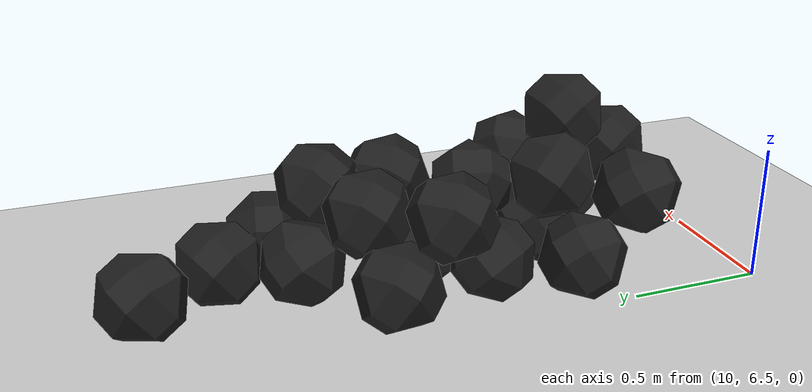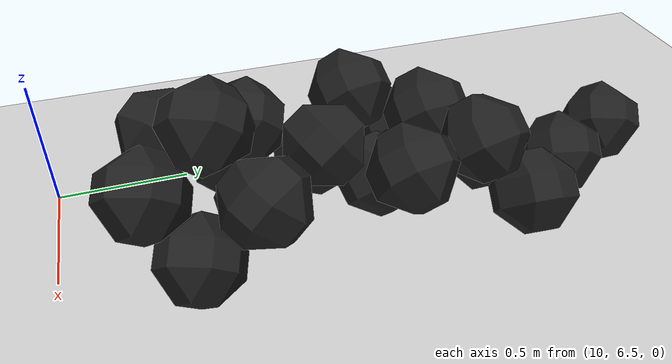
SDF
<sdf version="1.7">
 <world name="default">
  <model name="ground_plane">
   <static>1</static>
   <link name="link">
    <collision name="collision">
     <geometry><plane><normal>0 0 1</normal><size>100 100</size></plane></geometry>
     <surface><friction><ode><mu>100</mu><mu2>50</mu2></ode></friction></surface>
    </collision>
    <visual name="visual">
     <cast_shadows>0</cast_shadows>
     <geometry><plane><normal>0 0 1</normal><size>100 100</size></plane></geometry>
     <material>
      <script><uri>file://media/materials/scripts/gazebo.material</uri><name>Gazebo/Grey</name></script>
     </material>
    </visual>
   </link>
  </model>
  <model name="haoduomiantiaa_7">
   <link name="link_0">
    <inertial>
     <mass>0.2</mass>
     <inertia>
      <ixx>0.166667</ixx>
      <ixy>0</ixy>
      <ixz>0</ixz>
      <iyy>0.166667</iyy>
      <iyz>0</iyz>
      <izz>0.166667</izz>
     </inertia>
    </inertial>
    <visual name="visual">
     <geometry>
      <mesh>
       <uri>/home/lihaoyang/catkin_ws/src/pudong_gazebo/world/stl/haoduomianti.stl</uri>
       <scale>1 1 1</scale>
      </mesh>
     </geometry>
     <material>
      <lighting>1</lighting>
      <script><uri>file://media/materials/scripts/gazebo.material</uri><name>Gazebo/Black</name></script>
      <shader type="pixel"><normal_map>__default__</normal_map></shader>
      <ambient>0.3 0.3 0.3 1</ambient>
      <diffuse>0.7 0.7 0.7 1</diffuse>
      <specular>0.01 0.01 0.01 1</specular>
      <emissive>0 0 0 1</emissive>
     </material>
    </visual>
    <collision name="collision">
     <geometry>
      <mesh>
       <uri>/home/lihaoyang/catkin_ws/src/pudong_gazebo/world/stl/haoduomianti.stl</uri>
       <scale>1 1 1</scale>
      </mesh>
     </geometry>
     <surface>
      <friction>
       <ode><mu>1</mu><mu2>1</mu2><fdir1>0 0 0</fdir1><slip1>0</slip1><slip2>0</slip2></ode>
       <torsional>
        <coefficient>1</coefficient>
        <patch_radius>0</patch_radius>
        <surface_radius>0</surface_radius>
        <use_patch_radius>1</use_patch_radius>
        <ode><slip>0</slip></ode>
       </torsional>
      </friction>
      <bounce><restitution_coefficient>0</restitution_coefficient><threshold>1e+06</threshold></bounce>
      <contact>
       <collide_without_contact>0</collide_without_contact>
       <collide_without_contact_bitmask>1</collide_without_contact_bitmask>
       <collide_bitmask>1</collide_bitmask>
       <ode>
        <soft_cfm>0</soft_cfm>
        <soft_erp>0.2</soft_erp>
        <kp>1e+13</kp>
        <kd>1</kd>
        <max_vel>0.01</max_vel>
        <min_depth>0</min_depth>
       </ode>
       <bullet>
        <split_impulse>1</split_impulse>
        <split_impulse_penetration_threshold>-0.01</split_impulse_penetration_threshold>
        <soft_cfm>0</soft_cfm>
        <soft_erp>0.2</soft_erp>
        <kp>1e+13</kp>
        <kd>1</kd>
       </bullet>
      </contact>
     </surface>
    </collision>
   </link>
   <static>0</static>
   <pose>10.6925 6.98167 -0.115342 0.785476 -0.614709 -1.40642</pose>
  </model>
  <model name="haoduomiantiaa_11">
   <link name="link_0">
    <inertial>
     <mass>0.2</mass>
     <inertia>
      <ixx>0.166667</ixx>
      <ixy>0</ixy>
      <ixz>0</ixz>
      <iyy>0.166667</iyy>
      <iyz>0</iyz>
      <izz>0.166667</izz>
     </inertia>
    </inertial>
    <visual name="visual">
     <geometry>
      <mesh>
       <uri>/home/lihaoyang/catkin_ws/src/pudong_gazebo/world/stl/haoduomianti.stl</uri>
       <scale>1 1 1</scale>
      </mesh>
     </geometry>
     <material>
      <lighting>1</lighting>
      <script><uri>file://media/materials/scripts/gazebo.material</uri><name>Gazebo/Black</name></script>
      <shader type="pixel"><normal_map>__default__</normal_map></shader>
      <ambient>0.3 0.3 0.3 1</ambient>
      <diffuse>0.7 0.7 0.7 1</diffuse>
      <specular>0.01 0.01 0.01 1</specular>
      <emissive>0 0 0 1</emissive>
     </material>
    </visual>
    <collision name="collision">
     <geometry>
      <mesh>
       <uri>/home/lihaoyang/catkin_ws/src/pudong_gazebo/world/stl/haoduomianti.stl</uri>
       <scale>1 1 1</scale>
      </mesh>
     </geometry>
     <surface>
      <friction>
       <ode><mu>1</mu><mu2>1</mu2><fdir1>0 0 0</fdir1><slip1>0</slip1><slip2>0</slip2></ode>
       <torsional>
        <coefficient>1</coefficient>
        <patch_radius>0</patch_radius>
        <surface_radius>0</surface_radius>
        <use_patch_radius>1</use_patch_radius>
        <ode><slip>0</slip></ode>
       </torsional>
      </friction>
      <bounce><restitution_coefficient>0</restitution_coefficient><threshold>1e+06</threshold></bounce>
      <contact>
       <collide_without_contact>0</collide_without_contact>
       <collide_without_contact_bitmask>1</collide_without_contact_bitmask>
       <collide_bitmask>1</collide_bitmask>
       <ode>
        <soft_cfm>0</soft_cfm>
        <soft_erp>0.2</soft_erp>
        <kp>1e+13</kp>
        <kd>1</kd>
        <max_vel>0.01</max_vel>
        <min_depth>0</min_depth>
       </ode>
       <bullet>
        <split_impulse>1</split_impulse>
        <split_impulse_penetration_threshold>-0.01</split_impulse_penetration_threshold>
        <soft_cfm>0</soft_cfm>
        <soft_erp>0.2</soft_erp>
        <kp>1e+13</kp>
        <kd>1</kd>
       </bullet>
      </contact>
     </surface>
    </collision>
   </link>
   <static>0</static>
   <pose>10.313 7.37369 -0.074002 0.047479 -0.784931 0.69723</pose>
  </model>
  <model name="haoduomiantiaa_15">
   <link name="link_0">
    <inertial>
     <mass>0.2</mass>
     <inertia>
      <ixx>0.166667</ixx>
      <ixy>0</ixy>
      <ixz>0</ixz>
      <iyy>0.166667</iyy>
      <iyz>0</iyz>
      <izz>0.166667</izz>
     </inertia>
    </inertial>
    <visual name="visual">
     <geometry>
      <mesh>
       <uri>/home/lihaoyang/catkin_ws/src/pudong_gazebo/world/stl/haoduomianti.stl</uri>
       <scale>1 1 1</scale>
      </mesh>
     </geometry>
     <material>
      <lighting>1</lighting>
      <script><uri>file://media/materials/scripts/gazebo.material</uri><name>Gazebo/Black</name></script>
      <shader type="pixel"><normal_map>__default__</normal_map></shader>
      <ambient>0.3 0.3 0.3 1</ambient>
      <diffuse>0.7 0.7 0.7 1</diffuse>
      <specular>0.01 0.01 0.01 1</specular>
      <emissive>0 0 0 1</emissive>
     </material>
    </visual>
    <collision name="collision">
     <geometry>
      <mesh>
       <uri>/home/lihaoyang/catkin_ws/src/pudong_gazebo/world/stl/haoduomianti.stl</uri>
       <scale>1 1 1</scale>
      </mesh>
     </geometry>
     <surface>
      <friction>
       <ode><mu>1</mu><mu2>1</mu2><fdir1>0 0 0</fdir1><slip1>0</slip1><slip2>0</slip2></ode>
       <torsional>
        <coefficient>1</coefficient>
        <patch_radius>0</patch_radius>
        <surface_radius>0</surface_radius>
        <use_patch_radius>1</use_patch_radius>
        <ode><slip>0</slip></ode>
       </torsional>
      </friction>
      <bounce><restitution_coefficient>0</restitution_coefficient><threshold>1e+06</threshold></bounce>
      <contact>
       <collide_without_contact>0</collide_without_contact>
       <collide_without_contact_bitmask>1</collide_without_contact_bitmask>
       <collide_bitmask>1</collide_bitmask>
       <ode>
        <soft_cfm>0</soft_cfm>
        <soft_erp>0.2</soft_erp>
        <kp>1e+13</kp>
        <kd>1</kd>
        <max_vel>0.01</max_vel>
        <min_depth>0</min_depth>
       </ode>
       <bullet>
        <split_impulse>1</split_impulse>
        <split_impulse_penetration_threshold>-0.01</split_impulse_penetration_threshold>
        <soft_cfm>0</soft_cfm>
        <soft_erp>0.2</soft_erp>
        <kp>1e+13</kp>
        <kd>1</kd>
       </bullet>
      </contact>
     </surface>
    </collision>
   </link>
   <static>0</static>
   <pose>10.5856 6.84041 0.108561 0.778617 -0.623869 0.733198</pose>
  </model>
  <model name="haoduomiantiaa_21">
   <link name="link_0">
    <inertial>
     <mass>0.2</mass>
     <inertia>
      <ixx>0.166667</ixx>
      <ixy>0</ixy>
      <ixz>0</ixz>
      <iyy>0.166667</iyy>
      <iyz>0</iyz>
      <izz>0.166667</izz>
     </inertia>
    </inertial>
    <visual name="visual">
     <geometry>
      <mesh>
       <uri>/home/lihaoyang/catkin_ws/src/pudong_gazebo/world/stl/haoduomianti.stl</uri>
       <scale>1 1 1</scale>
      </mesh>
     </geometry>
     <material>
      <lighting>1</lighting>
      <script><uri>file://media/materials/scripts/gazebo.material</uri><name>Gazebo/Black</name></script>
      <shader type="pixel"><normal_map>__default__</normal_map></shader>
      <ambient>0.3 0.3 0.3 1</ambient>
      <diffuse>0.7 0.7 0.7 1</diffuse>
      <specular>0.01 0.01 0.01 1</specular>
      <emissive>0 0 0 1</emissive>
     </material>
    </visual>
    <collision name="collision">
     <geometry>
      <mesh>
       <uri>/home/lihaoyang/catkin_ws/src/pudong_gazebo/world/stl/haoduomianti.stl</uri>
       <scale>1 1 1</scale>
      </mesh>
     </geometry>
     <surface>
      <friction>
       <ode><mu>1</mu><mu2>1</mu2><fdir1>0 0 0</fdir1><slip1>0</slip1><slip2>0</slip2></ode>
       <torsional>
        <coefficient>1</coefficient>
        <patch_radius>0</patch_radius>
        <surface_radius>0</surface_radius>
        <use_patch_radius>1</use_patch_radius>
        <ode><slip>0</slip></ode>
       </torsional>
      </friction>
      <bounce><restitution_coefficient>0</restitution_coefficient><threshold>1e+06</threshold></bounce>
      <contact>
       <collide_without_contact>0</collide_without_contact>
       <collide_without_contact_bitmask>1</collide_without_contact_bitmask>
       <collide_bitmask>1</collide_bitmask>
       <ode>
        <soft_cfm>0</soft_cfm>
        <soft_erp>0.2</soft_erp>
        <kp>1e+13</kp>
        <kd>1</kd>
        <max_vel>0.01</max_vel>
        <min_depth>0</min_depth>
       </ode>
       <bullet>
        <split_impulse>1</split_impulse>
        <split_impulse_penetration_threshold>-0.01</split_impulse_penetration_threshold>
        <soft_cfm>0</soft_cfm>
        <soft_erp>0.2</soft_erp>
        <kp>1e+13</kp>
        <kd>1</kd>
       </bullet>
      </contact>
     </surface>
    </collision>
   </link>
   <static>0</static>
   <pose>10.6817 8.06538 -0.077247 1.47665 -0.783176 3.0757</pose>
  </model>
  <model name="haoduomiantiaa_23">
   <link name="link_0">
    <inertial>
     <mass>0.2</mass>
     <inertia>
      <ixx>0.166667</ixx>
      <ixy>0</ixy>
      <ixz>0</ixz>
      <iyy>0.166667</iyy>
      <iyz>0</iyz>
      <izz>0.166667</izz>
     </inertia>
    </inertial>
    <visual name="visual">
     <geometry>
      <mesh>
       <uri>/home/lihaoyang/catkin_ws/src/pudong_gazebo/world/stl/haoduomianti.stl</uri>
       <scale>1 1 1</scale>
      </mesh>
     </geometry>
     <material>
      <lighting>1</lighting>
      <script><uri>file://media/materials/scripts/gazebo.material</uri><name>Gazebo/Black</name></script>
      <shader type="pixel"><normal_map>__default__</normal_map></shader>
      <ambient>0.3 0.3 0.3 1</ambient>
      <diffuse>0.7 0.7 0.7 1</diffuse>
      <specular>0.01 0.01 0.01 1</specular>
      <emissive>0 0 0 1</emissive>
     </material>
    </visual>
    <collision name="collision">
     <geometry>
      <mesh>
       <uri>/home/lihaoyang/catkin_ws/src/pudong_gazebo/world/stl/haoduomianti.stl</uri>
       <scale>1 1 1</scale>
      </mesh>
     </geometry>
     <surface>
      <friction>
       <ode><mu>1</mu><mu2>1</mu2><fdir1>0 0 0</fdir1><slip1>0</slip1><slip2>0</slip2></ode>
       <torsional>
        <coefficient>1</coefficient>
        <patch_radius>0</patch_radius>
        <surface_radius>0</surface_radius>
        <use_patch_radius>1</use_patch_radius>
        <ode><slip>0</slip></ode>
       </torsional>
      </friction>
      <bounce><restitution_coefficient>0</restitution_coefficient><threshold>1e+06</threshold></bounce>
      <contact>
       <collide_without_contact>0</collide_without_contact>
       <collide_without_contact_bitmask>1</collide_without_contact_bitmask>
       <collide_bitmask>1</collide_bitmask>
       <ode>
        <soft_cfm>0</soft_cfm>
        <soft_erp>0.2</soft_erp>
        <kp>1e+13</kp>
        <kd>1</kd>
        <max_vel>0.01</max_vel>
        <min_depth>0</min_depth>
       </ode>
       <bullet>
        <split_impulse>1</split_impulse>
        <split_impulse_penetration_threshold>-0.01</split_impulse_penetration_threshold>
        <soft_cfm>0</soft_cfm>
        <soft_erp>0.2</soft_erp>
        <kp>1e+13</kp>
        <kd>1</kd>
       </bullet>
      </contact>
     </surface>
    </collision>
   </link>
   <static>0</static>
   <pose>10.354 8.69849 -0.11547 0.785396 -0.615476 2.76347</pose>
  </model>
  <model name="haoduomiantiaa_28">
   <link name="link_0">
    <inertial>
     <mass>0.2</mass>
     <inertia>
      <ixx>0.166667</ixx>
      <ixy>0</ixy>
      <ixz>0</ixz>
      <iyy>0.166667</iyy>
      <iyz>0</iyz>
      <izz>0.166667</izz>
     </inertia>
    </inertial>
    <visual name="visual">
     <geometry>
      <mesh>
       <uri>/home/lihaoyang/catkin_ws/src/pudong_gazebo/world/stl/haoduomianti.stl</uri>
       <scale>1 1 1</scale>
      </mesh>
     </geometry>
     <material>
      <lighting>1</lighting>
      <script><uri>file://media/materials/scripts/gazebo.material</uri><name>Gazebo/Black</name></script>
      <shader type="pixel"><normal_map>__default__</normal_map></shader>
      <ambient>0.3 0.3 0.3 1</ambient>
      <diffuse>0.7 0.7 0.7 1</diffuse>
      <specular>0.01 0.01 0.01 1</specular>
      <emissive>0 0 0 1</emissive>
     </material>
    </visual>
    <collision name="collision">
     <geometry>
      <mesh>
       <uri>/home/lihaoyang/catkin_ws/src/pudong_gazebo/world/stl/haoduomianti.stl</uri>
       <scale>1 1 1</scale>
      </mesh>
     </geometry>
     <surface>
      <friction>
       <ode><mu>1</mu><mu2>1</mu2><fdir1>0 0 0</fdir1><slip1>0</slip1><slip2>0</slip2></ode>
       <torsional>
        <coefficient>1</coefficient>
        <patch_radius>0</patch_radius>
        <surface_radius>0</surface_radius>
        <use_patch_radius>1</use_patch_radius>
        <ode><slip>0</slip></ode>
       </torsional>
      </friction>
      <bounce><restitution_coefficient>0</restitution_coefficient><threshold>1e+06</threshold></bounce>
      <contact>
       <collide_without_contact>0</collide_without_contact>
       <collide_without_contact_bitmask>1</collide_without_contact_bitmask>
       <collide_bitmask>1</collide_bitmask>
       <ode>
        <soft_cfm>0</soft_cfm>
        <soft_erp>0.2</soft_erp>
        <kp>1e+13</kp>
        <kd>1</kd>
        <max_vel>0.01</max_vel>
        <min_depth>0</min_depth>
       </ode>
       <bullet>
        <split_impulse>1</split_impulse>
        <split_impulse_penetration_threshold>-0.01</split_impulse_penetration_threshold>
        <soft_cfm>0</soft_cfm>
        <soft_erp>0.2</soft_erp>
        <kp>1e+13</kp>
        <kd>1</kd>
       </bullet>
      </contact>
     </surface>
    </collision>
   </link>
   <static>0</static>
   <pose>10.4567 7.22359 -0.115631 0.785351 -0.615391 -1.87047</pose>
  </model>
  <model name="haoduomiantiaa_31">
   <link name="link_0">
    <inertial>
     <mass>0.2</mass>
     <inertia>
      <ixx>0.166667</ixx>
      <ixy>0</ixy>
      <ixz>0</ixz>
      <iyy>0.166667</iyy>
      <iyz>0</iyz>
      <izz>0.166667</izz>
     </inertia>
    </inertial>
    <visual name="visual">
     <geometry>
      <mesh>
       <uri>/home/lihaoyang/catkin_ws/src/pudong_gazebo/world/stl/haoduomianti.stl</uri>
       <scale>1 1 1</scale>
      </mesh>
     </geometry>
     <material>
      <lighting>1</lighting>
      <script><uri>file://media/materials/scripts/gazebo.material</uri><name>Gazebo/Black</name></script>
      <shader type="pixel"><normal_map>__default__</normal_map></shader>
      <ambient>0.3 0.3 0.3 1</ambient>
      <diffuse>0.7 0.7 0.7 1</diffuse>
      <specular>0.01 0.01 0.01 1</specular>
      <emissive>0 0 0 1</emissive>
     </material>
    </visual>
    <collision name="collision">
     <geometry>
      <mesh>
       <uri>/home/lihaoyang/catkin_ws/src/pudong_gazebo/world/stl/haoduomianti.stl</uri>
       <scale>1 1 1</scale>
      </mesh>
     </geometry>
     <surface>
      <friction>
       <ode><mu>1</mu><mu2>1</mu2><fdir1>0 0 0</fdir1><slip1>0</slip1><slip2>0</slip2></ode>
       <torsional>
        <coefficient>1</coefficient>
        <patch_radius>0</patch_radius>
        <surface_radius>0</surface_radius>
        <use_patch_radius>1</use_patch_radius>
        <ode><slip>0</slip></ode>
       </torsional>
      </friction>
      <bounce><restitution_coefficient>0</restitution_coefficient><threshold>1e+06</threshold></bounce>
      <contact>
       <collide_without_contact>0</collide_without_contact>
       <collide_without_contact_bitmask>1</collide_without_contact_bitmask>
       <collide_bitmask>1</collide_bitmask>
       <ode>
        <soft_cfm>0</soft_cfm>
        <soft_erp>0.2</soft_erp>
        <kp>1e+13</kp>
        <kd>1</kd>
        <max_vel>0.01</max_vel>
        <min_depth>0</min_depth>
       </ode>
       <bullet>
        <split_impulse>1</split_impulse>
        <split_impulse_penetration_threshold>-0.01</split_impulse_penetration_threshold>
        <soft_cfm>0</soft_cfm>
        <soft_erp>0.2</soft_erp>
        <kp>1e+13</kp>
        <kd>1</kd>
       </bullet>
      </contact>
     </surface>
    </collision>
   </link>
   <static>0</static>
   <pose>10.4649 7.56277 -0.07761 1.47184 -0.782915 -2.74934</pose>
  </model>
  <model name="haoduomiantiaa_56">
   <link name="link_0">
    <inertial>
     <mass>0.2</mass>
     <inertia>
      <ixx>0.166667</ixx>
      <ixy>0</ixy>
      <ixz>0</ixz>
      <iyy>0.166667</iyy>
      <iyz>0</iyz>
      <izz>0.166667</izz>
     </inertia>
    </inertial>
    <visual name="visual">
     <geometry>
      <mesh>
       <uri>/home/lihaoyang/catkin_ws/src/pudong_gazebo/world/stl/haoduomianti.stl</uri>
       <scale>1 1 1</scale>
      </mesh>
     </geometry>
     <material>
      <lighting>1</lighting>
      <script><uri>file://media/materials/scripts/gazebo.material</uri><name>Gazebo/Black</name></script>
      <shader type="pixel"><normal_map>__default__</normal_map></shader>
      <ambient>0.3 0.3 0.3 1</ambient>
      <diffuse>0.7 0.7 0.7 1</diffuse>
      <specular>0.01 0.01 0.01 1</specular>
      <emissive>0 0 0 1</emissive>
     </material>
    </visual>
    <collision name="collision">
     <geometry>
      <mesh>
       <uri>/home/lihaoyang/catkin_ws/src/pudong_gazebo/world/stl/haoduomianti.stl</uri>
       <scale>1 1 1</scale>
      </mesh>
     </geometry>
     <surface>
      <friction>
       <ode><mu>1</mu><mu2>1</mu2><fdir1>0 0 0</fdir1><slip1>0</slip1><slip2>0</slip2></ode>
       <torsional>
        <coefficient>1</coefficient>
        <patch_radius>0</patch_radius>
        <surface_radius>0</surface_radius>
        <use_patch_radius>1</use_patch_radius>
        <ode><slip>0</slip></ode>
       </torsional>
      </friction>
      <bounce><restitution_coefficient>0</restitution_coefficient><threshold>1e+06</threshold></bounce>
      <contact>
       <collide_without_contact>0</collide_without_contact>
       <collide_without_contact_bitmask>1</collide_without_contact_bitmask>
       <collide_bitmask>1</collide_bitmask>
       <ode>
        <soft_cfm>0</soft_cfm>
        <soft_erp>0.2</soft_erp>
        <kp>1e+13</kp>
        <kd>1</kd>
        <max_vel>0.01</max_vel>
        <min_depth>0</min_depth>
       </ode>
       <bullet>
        <split_impulse>1</split_impulse>
        <split_impulse_penetration_threshold>-0.01</split_impulse_penetration_threshold>
        <soft_cfm>0</soft_cfm>
        <soft_erp>0.2</soft_erp>
        <kp>1e+13</kp>
        <kd>1</kd>
       </bullet>
      </contact>
     </surface>
    </collision>
   </link>
   <static>0</static>
   <pose>10.4455 7.47261 0.082101 0.77826 -0.596535 -0.3037</pose>
  </model>
  <model name="haoduomiantiaa_58">
   <link name="link_0">
    <inertial>
     <mass>0.2</mass>
     <inertia>
      <ixx>0.166667</ixx>
      <ixy>0</ixy>
      <ixz>0</ixz>
      <iyy>0.166667</iyy>
      <iyz>0</iyz>
      <izz>0.166667</izz>
     </inertia>
    </inertial>
    <visual name="visual">
     <geometry>
      <mesh>
       <uri>/home/lihaoyang/catkin_ws/src/pudong_gazebo/world/stl/haoduomianti.stl</uri>
       <scale>1 1 1</scale>
      </mesh>
     </geometry>
     <material>
      <lighting>1</lighting>
      <script><uri>file://media/materials/scripts/gazebo.material</uri><name>Gazebo/Black</name></script>
      <shader type="pixel"><normal_map>__default__</normal_map></shader>
      <ambient>0.3 0.3 0.3 1</ambient>
      <diffuse>0.7 0.7 0.7 1</diffuse>
      <specular>0.01 0.01 0.01 1</specular>
      <emissive>0 0 0 1</emissive>
     </material>
    </visual>
    <collision name="collision">
     <geometry>
      <mesh>
       <uri>/home/lihaoyang/catkin_ws/src/pudong_gazebo/world/stl/haoduomianti.stl</uri>
       <scale>1 1 1</scale>
      </mesh>
     </geometry>
     <surface>
      <friction>
       <ode><mu>1</mu><mu2>1</mu2><fdir1>0 0 0</fdir1><slip1>0</slip1><slip2>0</slip2></ode>
       <torsional>
        <coefficient>1</coefficient>
        <patch_radius>0</patch_radius>
        <surface_radius>0</surface_radius>
        <use_patch_radius>1</use_patch_radius>
        <ode><slip>0</slip></ode>
       </torsional>
      </friction>
      <bounce><restitution_coefficient>0</restitution_coefficient><threshold>1e+06</threshold></bounce>
      <contact>
       <collide_without_contact>0</collide_without_contact>
       <collide_without_contact_bitmask>1</collide_without_contact_bitmask>
       <collide_bitmask>1</collide_bitmask>
       <ode>
        <soft_cfm>0</soft_cfm>
        <soft_erp>0.2</soft_erp>
        <kp>1e+13</kp>
        <kd>1</kd>
        <max_vel>0.01</max_vel>
        <min_depth>0</min_depth>
       </ode>
       <bullet>
        <split_impulse>1</split_impulse>
        <split_impulse_penetration_threshold>-0.01</split_impulse_penetration_threshold>
        <soft_cfm>0</soft_cfm>
        <soft_erp>0.2</soft_erp>
        <kp>1e+13</kp>
        <kd>1</kd>
       </bullet>
      </contact>
     </surface>
    </collision>
   </link>
   <static>0</static>
   <pose>10.3248 7.90521 0.076488 0.749336 -0.609755 -0.916528</pose>
  </model>
  <model name="haoduomiantiaa_68">
   <link name="link_0">
    <inertial>
     <mass>0.2</mass>
     <inertia>
      <ixx>0.166667</ixx>
      <ixy>0</ixy>
      <ixz>0</ixz>
      <iyy>0.166667</iyy>
      <iyz>0</iyz>
      <izz>0.166667</izz>
     </inertia>
    </inertial>
    <visual name="visual">
     <geometry>
      <mesh>
       <uri>/home/lihaoyang/catkin_ws/src/pudong_gazebo/world/stl/haoduomianti.stl</uri>
       <scale>1 1 1</scale>
      </mesh>
     </geometry>
     <material>
      <lighting>1</lighting>
      <script><uri>file://media/materials/scripts/gazebo.material</uri><name>Gazebo/Black</name></script>
      <shader type="pixel"><normal_map>__default__</normal_map></shader>
      <ambient>0.3 0.3 0.3 1</ambient>
      <diffuse>0.7 0.7 0.7 1</diffuse>
      <specular>0.01 0.01 0.01 1</specular>
      <emissive>0 0 0 1</emissive>
     </material>
    </visual>
    <collision name="collision">
     <geometry>
      <mesh>
       <uri>/home/lihaoyang/catkin_ws/src/pudong_gazebo/world/stl/haoduomianti.stl</uri>
       <scale>1 1 1</scale>
      </mesh>
     </geometry>
     <surface>
      <friction>
       <ode><mu>1</mu><mu2>1</mu2><fdir1>0 0 0</fdir1><slip1>0</slip1><slip2>0</slip2></ode>
       <torsional>
        <coefficient>1</coefficient>
        <patch_radius>0</patch_radius>
        <surface_radius>0</surface_radius>
        <use_patch_radius>1</use_patch_radius>
        <ode><slip>0</slip></ode>
       </torsional>
      </friction>
      <bounce><restitution_coefficient>0</restitution_coefficient><threshold>1e+06</threshold></bounce>
      <contact>
       <collide_without_contact>0</collide_without_contact>
       <collide_without_contact_bitmask>1</collide_without_contact_bitmask>
       <collide_bitmask>1</collide_bitmask>
       <ode>
        <soft_cfm>0</soft_cfm>
        <soft_erp>0.2</soft_erp>
        <kp>1e+13</kp>
        <kd>1</kd>
        <max_vel>0.01</max_vel>
        <min_depth>0</min_depth>
       </ode>
       <bullet>
        <split_impulse>1</split_impulse>
        <split_impulse_penetration_threshold>-0.01</split_impulse_penetration_threshold>
        <soft_cfm>0</soft_cfm>
        <soft_erp>0.2</soft_erp>
        <kp>1e+13</kp>
        <kd>1</kd>
       </bullet>
      </contact>
     </surface>
    </collision>
   </link>
   <static>0</static>
   <pose>10.4668 8.08253 -0.097581 0.419221 -0.740181 0.59191</pose>
  </model>
  <model name="haoduomiantiaa_70">
   <link name="link_0">
    <inertial>
     <mass>0.2</mass>
     <inertia>
      <ixx>0.166667</ixx>
      <ixy>0</ixy>
      <ixz>0</ixz>
      <iyy>0.166667</iyy>
      <iyz>0</iyz>
      <izz>0.166667</izz>
     </inertia>
    </inertial>
    <visual name="visual">
     <geometry>
      <mesh>
       <uri>/home/lihaoyang/catkin_ws/src/pudong_gazebo/world/stl/haoduomianti.stl</uri>
       <scale>1 1 1</scale>
      </mesh>
     </geometry>
     <material>
      <lighting>1</lighting>
      <script><uri>file://media/materials/scripts/gazebo.material</uri><name>Gazebo/Black</name></script>
      <shader type="pixel"><normal_map>__default__</normal_map></shader>
      <ambient>0.3 0.3 0.3 1</ambient>
      <diffuse>0.7 0.7 0.7 1</diffuse>
      <specular>0.01 0.01 0.01 1</specular>
      <emissive>0 0 0 1</emissive>
     </material>
    </visual>
    <collision name="collision">
     <geometry>
      <mesh>
       <uri>/home/lihaoyang/catkin_ws/src/pudong_gazebo/world/stl/haoduomianti.stl</uri>
       <scale>1 1 1</scale>
      </mesh>
     </geometry>
     <surface>
      <friction>
       <ode><mu>1</mu><mu2>1</mu2><fdir1>0 0 0</fdir1><slip1>0</slip1><slip2>0</slip2></ode>
       <torsional>
        <coefficient>1</coefficient>
        <patch_radius>0</patch_radius>
        <surface_radius>0</surface_radius>
        <use_patch_radius>1</use_patch_radius>
        <ode><slip>0</slip></ode>
       </torsional>
      </friction>
      <bounce><restitution_coefficient>0</restitution_coefficient><threshold>1e+06</threshold></bounce>
      <contact>
       <collide_without_contact>0</collide_without_contact>
       <collide_without_contact_bitmask>1</collide_without_contact_bitmask>
       <collide_bitmask>1</collide_bitmask>
       <ode>
        <soft_cfm>0</soft_cfm>
        <soft_erp>0.2</soft_erp>
        <kp>1e+13</kp>
        <kd>1</kd>
        <max_vel>0.01</max_vel>
        <min_depth>0</min_depth>
       </ode>
       <bullet>
        <split_impulse>1</split_impulse>
        <split_impulse_penetration_threshold>-0.01</split_impulse_penetration_threshold>
        <soft_cfm>0</soft_cfm>
        <soft_erp>0.2</soft_erp>
        <kp>1e+13</kp>
        <kd>1</kd>
       </bullet>
      </contact>
     </surface>
    </collision>
   </link>
   <static>0</static>
   <pose>10.1164 7.16779 -0.115479 0.785342 -0.615484 0.194674</pose>
  </model>
  <model name="haoduomiantiaa_72">
   <link name="link_0">
    <inertial>
     <mass>0.2</mass>
     <inertia>
      <ixx>0.166667</ixx>
      <ixy>0</ixy>
      <ixz>0</ixz>
      <iyy>0.166667</iyy>
      <iyz>0</iyz>
      <izz>0.166667</izz>
     </inertia>
    </inertial>
    <visual name="visual">
     <geometry>
      <mesh>
       <uri>/home/lihaoyang/catkin_ws/src/pudong_gazebo/world/stl/haoduomianti.stl</uri>
       <scale>1 1 1</scale>
      </mesh>
     </geometry>
     <material>
      <lighting>1</lighting>
      <script><uri>file://media/materials/scripts/gazebo.material</uri><name>Gazebo/Black</name></script>
      <shader type="pixel"><normal_map>__default__</normal_map></shader>
      <ambient>0.3 0.3 0.3 1</ambient>
      <diffuse>0.7 0.7 0.7 1</diffuse>
      <specular>0.01 0.01 0.01 1</specular>
      <emissive>0 0 0 1</emissive>
     </material>
    </visual>
    <collision name="collision">
     <geometry>
      <mesh>
       <uri>/home/lihaoyang/catkin_ws/src/pudong_gazebo/world/stl/haoduomianti.stl</uri>
       <scale>1 1 1</scale>
      </mesh>
     </geometry>
     <surface>
      <friction>
       <ode><mu>1</mu><mu2>1</mu2><fdir1>0 0 0</fdir1><slip1>0</slip1><slip2>0</slip2></ode>
       <torsional>
        <coefficient>1</coefficient>
        <patch_radius>0</patch_radius>
        <surface_radius>0</surface_radius>
        <use_patch_radius>1</use_patch_radius>
        <ode><slip>0</slip></ode>
       </torsional>
      </friction>
      <bounce><restitution_coefficient>0</restitution_coefficient><threshold>1e+06</threshold></bounce>
      <contact>
       <collide_without_contact>0</collide_without_contact>
       <collide_without_contact_bitmask>1</collide_without_contact_bitmask>
       <collide_bitmask>1</collide_bitmask>
       <ode>
        <soft_cfm>0</soft_cfm>
        <soft_erp>0.2</soft_erp>
        <kp>1e+13</kp>
        <kd>1</kd>
        <max_vel>0.01</max_vel>
        <min_depth>0</min_depth>
       </ode>
       <bullet>
        <split_impulse>1</split_impulse>
        <split_impulse_penetration_threshold>-0.01</split_impulse_penetration_threshold>
        <soft_cfm>0</soft_cfm>
        <soft_erp>0.2</soft_erp>
        <kp>1e+13</kp>
        <kd>1</kd>
       </bullet>
      </contact>
     </surface>
    </collision>
   </link>
   <static>0</static>
   <pose>10.5087 8.41586 -0.115477 0.785433 -0.615446 2.89358</pose>
  </model>
  <model name="haoduomiantiaa_94">
   <link name="link_0">
    <inertial>
     <mass>0.2</mass>
     <inertia>
      <ixx>0.166667</ixx>
      <ixy>0</ixy>
      <ixz>0</ixz>
      <iyy>0.166667</iyy>
      <iyz>0</iyz>
      <izz>0.166667</izz>
     </inertia>
    </inertial>
    <visual name="visual">
     <geometry>
      <mesh>
       <uri>/home/lihaoyang/catkin_ws/src/pudong_gazebo/world/stl/haoduomianti.stl</uri>
       <scale>1 1 1</scale>
      </mesh>
     </geometry>
     <material>
      <lighting>1</lighting>
      <script><uri>file://media/materials/scripts/gazebo.material</uri><name>Gazebo/Black</name></script>
      <shader type="pixel"><normal_map>__default__</normal_map></shader>
      <ambient>0.3 0.3 0.3 1</ambient>
      <diffuse>0.7 0.7 0.7 1</diffuse>
      <specular>0.01 0.01 0.01 1</specular>
      <emissive>0 0 0 1</emissive>
     </material>
    </visual>
    <collision name="collision">
     <geometry>
      <mesh>
       <uri>/home/lihaoyang/catkin_ws/src/pudong_gazebo/world/stl/haoduomianti.stl</uri>
       <scale>1 1 1</scale>
      </mesh>
     </geometry>
     <surface>
      <friction>
       <ode><mu>1</mu><mu2>1</mu2><fdir1>0 0 0</fdir1><slip1>0</slip1><slip2>0</slip2></ode>
       <torsional>
        <coefficient>1</coefficient>
        <patch_radius>0</patch_radius>
        <surface_radius>0</surface_radius>
        <use_patch_radius>1</use_patch_radius>
        <ode><slip>0</slip></ode>
       </torsional>
      </friction>
      <bounce><restitution_coefficient>0</restitution_coefficient><threshold>1e+06</threshold></bounce>
      <contact>
       <collide_without_contact>0</collide_without_contact>
       <collide_without_contact_bitmask>1</collide_without_contact_bitmask>
       <collide_bitmask>1</collide_bitmask>
       <ode>
        <soft_cfm>0</soft_cfm>
        <soft_erp>0.2</soft_erp>
        <kp>1e+13</kp>
        <kd>1</kd>
        <max_vel>0.01</max_vel>
        <min_depth>0</min_depth>
       </ode>
       <bullet>
        <split_impulse>1</split_impulse>
        <split_impulse_penetration_threshold>-0.01</split_impulse_penetration_threshold>
        <soft_cfm>0</soft_cfm>
        <soft_erp>0.2</soft_erp>
        <kp>1e+13</kp>
        <kd>1</kd>
       </bullet>
      </contact>
     </surface>
    </collision>
   </link>
   <static>0</static>
   <pose>10.6608 7.72326 0.066561 0.769345 -0.637633 -0.81097</pose>
  </model>
  <model name="haoduomiantiaa_98">
   <link name="link_0">
    <inertial>
     <mass>0.2</mass>
     <inertia>
      <ixx>0.166667</ixx>
      <ixy>0</ixy>
      <ixz>0</ixz>
      <iyy>0.166667</iyy>
      <iyz>0</iyz>
      <izz>0.166667</izz>
     </inertia>
    </inertial>
    <visual name="visual">
     <geometry>
      <mesh>
       <uri>/home/lihaoyang/catkin_ws/src/pudong_gazebo/world/stl/haoduomianti.stl</uri>
       <scale>1 1 1</scale>
      </mesh>
     </geometry>
     <material>
      <lighting>1</lighting>
      <script><uri>file://media/materials/scripts/gazebo.material</uri><name>Gazebo/Black</name></script>
      <shader type="pixel"><normal_map>__default__</normal_map></shader>
      <ambient>0.3 0.3 0.3 1</ambient>
      <diffuse>0.7 0.7 0.7 1</diffuse>
      <specular>0.01 0.01 0.01 1</specular>
      <emissive>0 0 0 1</emissive>
     </material>
    </visual>
    <collision name="collision">
     <geometry>
      <mesh>
       <uri>/home/lihaoyang/catkin_ws/src/pudong_gazebo/world/stl/haoduomianti.stl</uri>
       <scale>1 1 1</scale>
      </mesh>
     </geometry>
     <surface>
      <friction>
       <ode><mu>1</mu><mu2>1</mu2><fdir1>0 0 0</fdir1><slip1>0</slip1><slip2>0</slip2></ode>
       <torsional>
        <coefficient>1</coefficient>
        <patch_radius>0</patch_radius>
        <surface_radius>0</surface_radius>
        <use_patch_radius>1</use_patch_radius>
        <ode><slip>0</slip></ode>
       </torsional>
      </friction>
      <bounce><restitution_coefficient>0</restitution_coefficient><threshold>1e+06</threshold></bounce>
      <contact>
       <collide_without_contact>0</collide_without_contact>
       <collide_without_contact_bitmask>1</collide_without_contact_bitmask>
       <collide_bitmask>1</collide_bitmask>
       <ode>
        <soft_cfm>0</soft_cfm>
        <soft_erp>0.2</soft_erp>
        <kp>1e+13</kp>
        <kd>1</kd>
        <max_vel>0.01</max_vel>
        <min_depth>0</min_depth>
       </ode>
       <bullet>
        <split_impulse>1</split_impulse>
        <split_impulse_penetration_threshold>-0.01</split_impulse_penetration_threshold>
        <soft_cfm>0</soft_cfm>
        <soft_erp>0.2</soft_erp>
        <kp>1e+13</kp>
        <kd>1</kd>
       </bullet>
      </contact>
     </surface>
    </collision>
   </link>
   <static>0</static>
   <pose>10.2226 6.90547 0.085091 0.625959 -0.774547 0.264173</pose>
  </model>
  <model name="haoduomiantiaa_99">
   <link name="link_0">
    <inertial>
     <mass>0.2</mass>
     <inertia>
      <ixx>0.166667</ixx>
      <ixy>0</ixy>
      <ixz>0</ixz>
      <iyy>0.166667</iyy>
      <iyz>0</iyz>
      <izz>0.166667</izz>
     </inertia>
    </inertial>
    <visual name="visual">
     <geometry>
      <mesh>
       <uri>/home/lihaoyang/catkin_ws/src/pudong_gazebo/world/stl/haoduomianti.stl</uri>
       <scale>1 1 1</scale>
      </mesh>
     </geometry>
     <material>
      <lighting>1</lighting>
      <script><uri>file://media/materials/scripts/gazebo.material</uri><name>Gazebo/Black</name></script>
      <shader type="pixel"><normal_map>__default__</normal_map></shader>
      <ambient>0.3 0.3 0.3 1</ambient>
      <diffuse>0.7 0.7 0.7 1</diffuse>
      <specular>0.01 0.01 0.01 1</specular>
      <emissive>0 0 0 1</emissive>
     </material>
    </visual>
    <collision name="collision">
     <geometry>
      <mesh>
       <uri>/home/lihaoyang/catkin_ws/src/pudong_gazebo/world/stl/haoduomianti.stl</uri>
       <scale>1 1 1</scale>
      </mesh>
     </geometry>
     <surface>
      <friction>
       <ode><mu>1</mu><mu2>1</mu2><fdir1>0 0 0</fdir1><slip1>0</slip1><slip2>0</slip2></ode>
       <torsional>
        <coefficient>1</coefficient>
        <patch_radius>0</patch_radius>
        <surface_radius>0</surface_radius>
        <use_patch_radius>1</use_patch_radius>
        <ode><slip>0</slip></ode>
       </torsional>
      </friction>
      <bounce><restitution_coefficient>0</restitution_coefficient><threshold>1e+06</threshold></bounce>
      <contact>
       <collide_without_contact>0</collide_without_contact>
       <collide_without_contact_bitmask>1</collide_without_contact_bitmask>
       <collide_bitmask>1</collide_bitmask>
       <ode>
        <soft_cfm>0</soft_cfm>
        <soft_erp>0.2</soft_erp>
        <kp>1e+13</kp>
        <kd>1</kd>
        <max_vel>0.01</max_vel>
        <min_depth>0</min_depth>
       </ode>
       <bullet>
        <split_impulse>1</split_impulse>
        <split_impulse_penetration_threshold>-0.01</split_impulse_penetration_threshold>
        <soft_cfm>0</soft_cfm>
        <soft_erp>0.2</soft_erp>
        <kp>1e+13</kp>
        <kd>1</kd>
       </bullet>
      </contact>
     </surface>
    </collision>
   </link>
   <static>0</static>
   <pose>10.7117 7.2539 0.089625 0.985193 -0.549201 -0.535304</pose>
  </model>
  <model name="haoduomiantiaa_110">
   <link name="link_0">
    <inertial>
     <mass>0.2</mass>
     <inertia>
      <ixx>0.166667</ixx>
      <ixy>0</ixy>
      <ixz>0</ixz>
      <iyy>0.166667</iyy>
      <iyz>0</iyz>
      <izz>0.166667</izz>
     </inertia>
    </inertial>
    <visual name="visual">
     <geometry>
      <mesh>
       <uri>/home/lihaoyang/catkin_ws/src/pudong_gazebo/world/stl/haoduomianti.stl</uri>
       <scale>1 1 1</scale>
      </mesh>
     </geometry>
     <material>
      <lighting>1</lighting>
      <script><uri>file://media/materials/scripts/gazebo.material</uri><name>Gazebo/Black</name></script>
      <shader type="pixel"><normal_map>__default__</normal_map></shader>
      <ambient>0.3 0.3 0.3 1</ambient>
      <diffuse>0.7 0.7 0.7 1</diffuse>
      <specular>0.01 0.01 0.01 1</specular>
      <emissive>0 0 0 1</emissive>
     </material>
    </visual>
    <collision name="collision">
     <geometry>
      <mesh>
       <uri>/home/lihaoyang/catkin_ws/src/pudong_gazebo/world/stl/haoduomianti.stl</uri>
       <scale>1 1 1</scale>
      </mesh>
     </geometry>
     <surface>
      <friction>
       <ode><mu>1</mu><mu2>1</mu2><fdir1>0 0 0</fdir1><slip1>0</slip1><slip2>0</slip2></ode>
       <torsional>
        <coefficient>1</coefficient>
        <patch_radius>0</patch_radius>
        <surface_radius>0</surface_radius>
        <use_patch_radius>1</use_patch_radius>
        <ode><slip>0</slip></ode>
       </torsional>
      </friction>
      <bounce><restitution_coefficient>0</restitution_coefficient><threshold>1e+06</threshold></bounce>
      <contact>
       <collide_without_contact>0</collide_without_contact>
       <collide_without_contact_bitmask>1</collide_without_contact_bitmask>
       <collide_bitmask>1</collide_bitmask>
       <ode>
        <soft_cfm>0</soft_cfm>
        <soft_erp>0.2</soft_erp>
        <kp>1e+13</kp>
        <kd>1</kd>
        <max_vel>0.01</max_vel>
        <min_depth>0</min_depth>
       </ode>
       <bullet>
        <split_impulse>1</split_impulse>
        <split_impulse_penetration_threshold>-0.01</split_impulse_penetration_threshold>
        <soft_cfm>0</soft_cfm>
        <soft_erp>0.2</soft_erp>
        <kp>1e+13</kp>
        <kd>1</kd>
       </bullet>
      </contact>
     </surface>
    </collision>
   </link>
   <static>0</static>
   <pose>10.2976 7.18183 0.136631 0.745074 -0.75094 -1.27791</pose>
  </model>
  <model name="haoduomiantiaa_112">
   <link name="link_0">
    <inertial>
     <mass>0.2</mass>
     <inertia>
      <ixx>0.166667</ixx>
      <ixy>0</ixy>
      <ixz>0</ixz>
      <iyy>0.166667</iyy>
      <iyz>0</iyz>
      <izz>0.166667</izz>
     </inertia>
    </inertial>
    <visual name="visual">
     <geometry>
      <mesh>
       <uri>/home/lihaoyang/catkin_ws/src/pudong_gazebo/world/stl/haoduomianti.stl</uri>
       <scale>1 1 1</scale>
      </mesh>
     </geometry>
     <material>
      <lighting>1</lighting>
      <script><uri>file://media/materials/scripts/gazebo.material</uri><name>Gazebo/Black</name></script>
      <shader type="pixel"><normal_map>__default__</normal_map></shader>
      <ambient>0.3 0.3 0.3 1</ambient>
      <diffuse>0.7 0.7 0.7 1</diffuse>
      <specular>0.01 0.01 0.01 1</specular>
      <emissive>0 0 0 1</emissive>
     </material>
    </visual>
    <collision name="collision">
     <geometry>
      <mesh>
       <uri>/home/lihaoyang/catkin_ws/src/pudong_gazebo/world/stl/haoduomianti.stl</uri>
       <scale>1 1 1</scale>
      </mesh>
     </geometry>
     <surface>
      <friction>
       <ode><mu>1</mu><mu2>1</mu2><fdir1>0 0 0</fdir1><slip1>0</slip1><slip2>0</slip2></ode>
       <torsional>
        <coefficient>1</coefficient>
        <patch_radius>0</patch_radius>
        <surface_radius>0</surface_radius>
        <use_patch_radius>1</use_patch_radius>
        <ode><slip>0</slip></ode>
       </torsional>
      </friction>
      <bounce><restitution_coefficient>0</restitution_coefficient><threshold>1e+06</threshold></bounce>
      <contact>
       <collide_without_contact>0</collide_without_contact>
       <collide_without_contact_bitmask>1</collide_without_contact_bitmask>
       <collide_bitmask>1</collide_bitmask>
       <ode>
        <soft_cfm>0</soft_cfm>
        <soft_erp>0.2</soft_erp>
        <kp>1e+13</kp>
        <kd>1</kd>
        <max_vel>0.01</max_vel>
        <min_depth>0</min_depth>
       </ode>
       <bullet>
        <split_impulse>1</split_impulse>
        <split_impulse_penetration_threshold>-0.01</split_impulse_penetration_threshold>
        <soft_cfm>0</soft_cfm>
        <soft_erp>0.2</soft_erp>
        <kp>1e+13</kp>
        <kd>1</kd>
       </bullet>
      </contact>
     </surface>
    </collision>
   </link>
   <static>0</static>
   <pose>10.5722 8.05594 0.099824 0.770782 -0.430584 -0.930704</pose>
  </model>
  <model name="haoduomiantiaa_119">
   <link name="link_0">
    <inertial>
     <mass>0.2</mass>
     <inertia>
      <ixx>0.166667</ixx>
      <ixy>0</ixy>
      <ixz>0</ixz>
      <iyy>0.166667</iyy>
      <iyz>0</iyz>
      <izz>0.166667</izz>
     </inertia>
    </inertial>
    <visual name="visual">
     <geometry>
      <mesh>
       <uri>/home/lihaoyang/catkin_ws/src/pudong_gazebo/world/stl/haoduomianti.stl</uri>
       <scale>1 1 1</scale>
      </mesh>
     </geometry>
     <material>
      <lighting>1</lighting>
      <script><uri>file://media/materials/scripts/gazebo.material</uri><name>Gazebo/Black</name></script>
      <shader type="pixel"><normal_map>__default__</normal_map></shader>
      <ambient>0.3 0.3 0.3 1</ambient>
      <diffuse>0.7 0.7 0.7 1</diffuse>
      <specular>0.01 0.01 0.01 1</specular>
      <emissive>0 0 0 1</emissive>
     </material>
    </visual>
    <collision name="collision">
     <geometry>
      <mesh>
       <uri>/home/lihaoyang/catkin_ws/src/pudong_gazebo/world/stl/haoduomianti.stl</uri>
       <scale>1 1 1</scale>
      </mesh>
     </geometry>
     <surface>
      <friction>
       <ode><mu>1</mu><mu2>1</mu2><fdir1>0 0 0</fdir1><slip1>0</slip1><slip2>0</slip2></ode>
       <torsional>
        <coefficient>1</coefficient>
        <patch_radius>0</patch_radius>
        <surface_radius>0</surface_radius>
        <use_patch_radius>1</use_patch_radius>
        <ode><slip>0</slip></ode>
       </torsional>
      </friction>
      <bounce><restitution_coefficient>0</restitution_coefficient><threshold>1e+06</threshold></bounce>
      <contact>
       <collide_without_contact>0</collide_without_contact>
       <collide_without_contact_bitmask>1</collide_without_contact_bitmask>
       <collide_bitmask>1</collide_bitmask>
       <ode>
        <soft_cfm>0</soft_cfm>
        <soft_erp>0.2</soft_erp>
        <kp>1e+13</kp>
        <kd>1</kd>
        <max_vel>0.01</max_vel>
        <min_depth>0</min_depth>
       </ode>
       <bullet>
        <split_impulse>1</split_impulse>
        <split_impulse_penetration_threshold>-0.01</split_impulse_penetration_threshold>
        <soft_cfm>0</soft_cfm>
        <soft_erp>0.2</soft_erp>
        <kp>1e+13</kp>
        <kd>1</kd>
       </bullet>
      </contact>
     </surface>
    </collision>
   </link>
   <static>0</static>
   <pose>10.1337 7.6623 0.102373 0.776405 -0.649143 -2.92455</pose>
  </model>
  <model name="haoduomiantiaa_126">
   <link name="link_0">
    <inertial>
     <mass>0.2</mass>
     <inertia>
      <ixx>0.166667</ixx>
      <ixy>0</ixy>
      <ixz>0</ixz>
      <iyy>0.166667</iyy>
      <iyz>0</iyz>
      <izz>0.166667</izz>
     </inertia>
    </inertial>
    <visual name="visual">
     <geometry>
      <mesh>
       <uri>/home/lihaoyang/catkin_ws/src/pudong_gazebo/world/stl/haoduomianti.stl</uri>
       <scale>1 1 1</scale>
      </mesh>
     </geometry>
     <material>
      <lighting>1</lighting>
      <script><uri>file://media/materials/scripts/gazebo.material</uri><name>Gazebo/Black</name></script>
      <shader type="pixel"><normal_map>__default__</normal_map></shader>
      <ambient>0.3 0.3 0.3 1</ambient>
      <diffuse>0.7 0.7 0.7 1</diffuse>
      <specular>0.01 0.01 0.01 1</specular>
      <emissive>0 0 0 1</emissive>
     </material>
    </visual>
    <collision name="collision">
     <geometry>
      <mesh>
       <uri>/home/lihaoyang/catkin_ws/src/pudong_gazebo/world/stl/haoduomianti.stl</uri>
       <scale>1 1 1</scale>
      </mesh>
     </geometry>
     <surface>
      <friction>
       <ode><mu>1</mu><mu2>1</mu2><fdir1>0 0 0</fdir1><slip1>0</slip1><slip2>0</slip2></ode>
       <torsional>
        <coefficient>1</coefficient>
        <patch_radius>0</patch_radius>
        <surface_radius>0</surface_radius>
        <use_patch_radius>1</use_patch_radius>
        <ode><slip>0</slip></ode>
       </torsional>
      </friction>
      <bounce><restitution_coefficient>0</restitution_coefficient><threshold>1e+06</threshold></bounce>
      <contact>
       <collide_without_contact>0</collide_without_contact>
       <collide_without_contact_bitmask>1</collide_without_contact_bitmask>
       <collide_bitmask>1</collide_bitmask>
       <ode>
        <soft_cfm>0</soft_cfm>
        <soft_erp>0.2</soft_erp>
        <kp>1e+13</kp>
        <kd>1</kd>
        <max_vel>0.01</max_vel>
        <min_depth>0</min_depth>
       </ode>
       <bullet>
        <split_impulse>1</split_impulse>
        <split_impulse_penetration_threshold>-0.01</split_impulse_penetration_threshold>
        <soft_cfm>0</soft_cfm>
        <soft_erp>0.2</soft_erp>
        <kp>1e+13</kp>
        <kd>1</kd>
       </bullet>
      </contact>
     </surface>
    </collision>
   </link>
   <static>0</static>
   <pose>10.5391 7.05634 0.284999 0.671824 -0.65001 0.708561</pose>
  </model>
  <model name="haoduomiantiaa_132">
   <link name="link_0">
    <inertial>
     <mass>0.2</mass>
     <inertia>
      <ixx>0.166667</ixx>
      <ixy>0</ixy>
      <ixz>0</ixz>
      <iyy>0.166667</iyy>
      <iyz>0</iyz>
      <izz>0.166667</izz>
     </inertia>
    </inertial>
    <visual name="visual">
     <geometry>
      <mesh>
       <uri>/home/lihaoyang/catkin_ws/src/pudong_gazebo/world/stl/haoduomianti.stl</uri>
       <scale>1 1 1</scale>
      </mesh>
     </geometry>
     <material>
      <lighting>1</lighting>
      <script><uri>file://media/materials/scripts/gazebo.material</uri><name>Gazebo/Black</name></script>
      <shader type="pixel"><normal_map>__default__</normal_map></shader>
      <ambient>0.3 0.3 0.3 1</ambient>
      <diffuse>0.7 0.7 0.7 1</diffuse>
      <specular>0.01 0.01 0.01 1</specular>
      <emissive>0 0 0 1</emissive>
     </material>
    </visual>
    <collision name="collision">
     <geometry>
      <mesh>
       <uri>/home/lihaoyang/catkin_ws/src/pudong_gazebo/world/stl/haoduomianti.stl</uri>
       <scale>1 1 1</scale>
      </mesh>
     </geometry>
     <surface>
      <friction>
       <ode><mu>1</mu><mu2>1</mu2><fdir1>0 0 0</fdir1><slip1>0</slip1><slip2>0</slip2></ode>
       <torsional>
        <coefficient>1</coefficient>
        <patch_radius>0</patch_radius>
        <surface_radius>0</surface_radius>
        <use_patch_radius>1</use_patch_radius>
        <ode><slip>0</slip></ode>
       </torsional>
      </friction>
      <bounce><restitution_coefficient>0</restitution_coefficient><threshold>1e+06</threshold></bounce>
      <contact>
       <collide_without_contact>0</collide_without_contact>
       <collide_without_contact_bitmask>1</collide_without_contact_bitmask>
       <collide_bitmask>1</collide_bitmask>
       <ode>
        <soft_cfm>0</soft_cfm>
        <soft_erp>0.2</soft_erp>
        <kp>1e+13</kp>
        <kd>1</kd>
        <max_vel>0.01</max_vel>
        <min_depth>0</min_depth>
       </ode>
       <bullet>
        <split_impulse>1</split_impulse>
        <split_impulse_penetration_threshold>-0.01</split_impulse_penetration_threshold>
        <soft_cfm>0</soft_cfm>
        <soft_erp>0.2</soft_erp>
        <kp>1e+13</kp>
        <kd>1</kd>
       </bullet>
      </contact>
     </surface>
    </collision>
   </link>
   <static>0</static>
   <pose>10.1173 7.86805 -0.115487 0.785387 -0.615464 -0.92395</pose>
  </model>
 </world>
</sdf>
